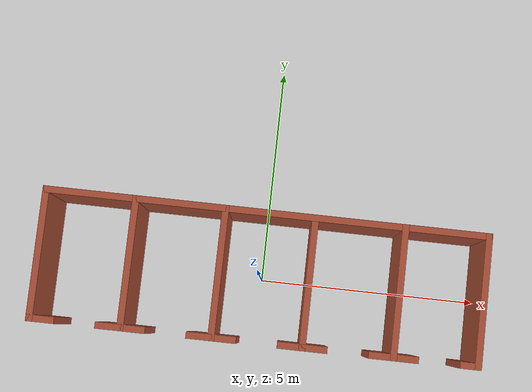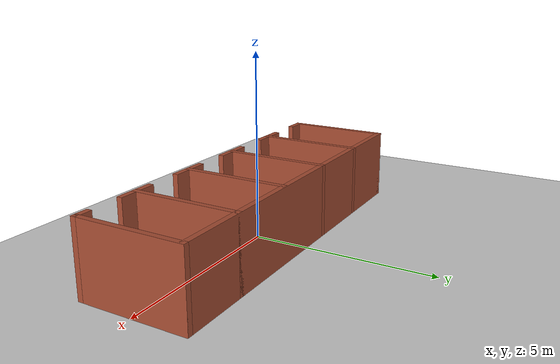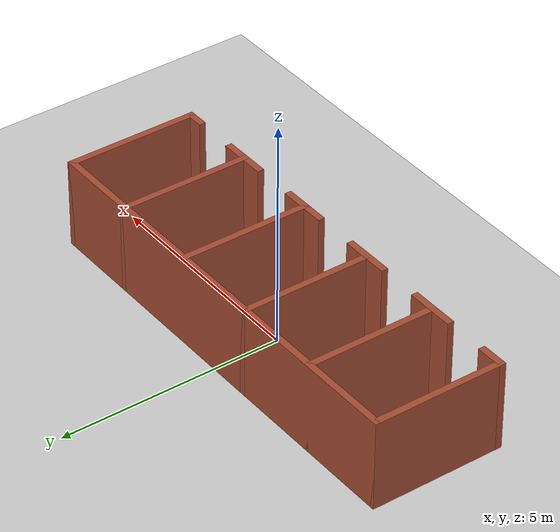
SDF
<sdf version="1.7">
 <world name="default">
  <light name="sun" type="directional">
   <pose>0 0 10 0 -0 0</pose>
   <diffuse>0.8 0.8 0.8 1</diffuse>
   <specular>0.2 0.2 0.2 1</specular>
   <attenuation>
    <range>1000</range>
    <constant>0.9</constant>
    <linear>0.01</linear>
    <quadratic>0.001</quadratic>
   </attenuation>
   <direction>-0.5 0.1 -0.9</direction>
   <spot><inner_angle>0</inner_angle><outer_angle>0</outer_angle><falloff>0</falloff></spot>
  </light>
  <model name="ground_plane">
   <static>1</static>
   <link name="link">
    <collision name="collision">
     <geometry><plane><normal>0 0 1</normal><size>100 100</size></plane></geometry>
     <surface><friction><ode><mu>100</mu><mu2>50</mu2></ode></friction></surface>
    </collision>
    <visual name="visual">
     <cast_shadows>0</cast_shadows>
     <geometry><plane><normal>0 0 1</normal><size>100 100</size></plane></geometry>
     <material>
      <script><uri>file://media/materials/scripts/gazebo.material</uri><name>Gazebo/Grey</name></script>
     </material>
    </visual>
   </link>
  </model>
  <gravity>0 0 -9.8</gravity>
  <magnetic_field>6e-06 2.3e-05 -4.2e-05</magnetic_field>
  <atmosphere type="adiabatic"/>
  <physics type="ode">
   <max_step_size>0.001</max_step_size>
   <real_time_factor>1</real_time_factor>
   <real_time_update_rate>1000</real_time_update_rate>
  </physics>
  <scene><ambient>0.4 0.4 0.4 1</ambient><background>0.7 0.7 0.7 1</background><shadows>1</shadows></scene>
  <spherical_coordinates>
   <surface_model>EARTH_WGS84</surface_model>
   <latitude_deg>0</latitude_deg>
   <longitude_deg>0</longitude_deg>
   <elevation>0</elevation>
   <heading_deg>0</heading_deg>
  </spherical_coordinates>
  <model name="garage">
   <link name="Wall_11">
    <collision name="Wall_11_Collision">
     <geometry><box><size>3 0.15 2</size></box></geometry>
     <pose>0 0 1 0 -0 0</pose>
    </collision>
    <visual name="Wall_11_Visual">
     <pose>0 0 1 0 -0 0</pose>
     <geometry><box><size>3 0.15 2</size></box></geometry>
     <material>
      <script><uri>file://media/materials/scripts/gazebo.material</uri><name>Gazebo/Bricks</name></script>
      <ambient>1 1 1 1</ambient>
     </material>
     <meta><layer>0</layer></meta>
    </visual>
    <pose>-2.925 0 0 0 -0 1.5708</pose>
   </link>
   <link name="Wall_13">
    <collision name="Wall_13_Collision">
     <geometry><box><size>3 0.15 2</size></box></geometry>
     <pose>0 0 1 0 -0 0</pose>
    </collision>
    <visual name="Wall_13_Visual">
     <pose>0 0 1 0 -0 0</pose>
     <geometry><box><size>3 0.15 2</size></box></geometry>
     <material>
      <script><uri>file://media/materials/scripts/gazebo.material</uri><name>Gazebo/Bricks</name></script>
      <ambient>1 1 1 1</ambient>
     </material>
     <meta><layer>0</layer></meta>
    </visual>
    <pose>-0.925 0 0 0 -0 1.5708</pose>
   </link>
   <link name="Wall_15">
    <collision name="Wall_15_Collision">
     <geometry><box><size>2.97 0.15 2</size></box></geometry>
     <pose>0 0 1 0 -0 0</pose>
    </collision>
    <visual name="Wall_15_Visual">
     <pose>0 0 1 0 -0 0</pose>
     <geometry><box><size>2.97 0.15 2</size></box></geometry>
     <material>
      <script><uri>file://media/materials/scripts/gazebo.material</uri><name>Gazebo/Bricks</name></script>
      <ambient>1 1 1 1</ambient>
     </material>
     <meta><layer>0</layer></meta>
    </visual>
    <pose>1.075 -0.015 0 0 -0 1.5708</pose>
   </link>
   <link name="Wall_17">
    <collision name="Wall_17_Collision">
     <geometry><box><size>3 0.15 2</size></box></geometry>
     <pose>0 0 1 0 -0 0</pose>
    </collision>
    <visual name="Wall_17_Visual">
     <pose>0 0 1 0 -0 0</pose>
     <geometry><box><size>3 0.15 2</size></box></geometry>
     <material>
      <script><uri>file://media/materials/scripts/gazebo.material</uri><name>Gazebo/Bricks</name></script>
      <ambient>1 1 1 1</ambient>
     </material>
     <meta><layer>0</layer></meta>
    </visual>
    <pose>3.075 0 0 0 -0 1.5708</pose>
   </link>
   <link name="Wall_5">
    <pose>0 -1.425 0 0 -0 0</pose>
    <visual name="Wall_5_Visual_0">
     <pose>-4.6875 0 1 0 -0 0</pose>
     <geometry><box><size>0.625 0.15 2</size></box></geometry>
     <material>
      <script><uri>file://media/materials/scripts/gazebo.material</uri><name>Gazebo/Bricks</name></script>
      <ambient>1 1 1 1</ambient>
     </material>
     <meta><layer>0</layer></meta>
    </visual>
    <collision name="Wall_5_Collision_0">
     <geometry><box><size>0.625 0.15 2</size></box></geometry>
     <pose>-4.6875 0 1 0 -0 0</pose>
    </collision>
    <visual name="Wall_5_Visual_1">
     <pose>-2.925 0 1 0 -0 0</pose>
     <geometry><box><size>1.1 0.15 2</size></box></geometry>
     <material>
      <script><uri>file://media/materials/scripts/gazebo.material</uri><name>Gazebo/Bricks</name></script>
      <ambient>1 1 1 1</ambient>
     </material>
     <meta><layer>0</layer></meta>
    </visual>
    <collision name="Wall_5_Collision_1">
     <geometry><box><size>1.1 0.15 2</size></box></geometry>
     <pose>-2.925 0 1 0 -0 0</pose>
    </collision>
    <visual name="Wall_5_Visual_2">
     <pose>-0.925 0 1 0 -0 0</pose>
     <geometry><box><size>1.1 0.15 2</size></box></geometry>
     <material>
      <script><uri>file://media/materials/scripts/gazebo.material</uri><name>Gazebo/Bricks</name></script>
      <ambient>1 1 1 1</ambient>
     </material>
     <meta><layer>0</layer></meta>
    </visual>
    <collision name="Wall_5_Collision_2">
     <geometry><box><size>1.1 0.15 2</size></box></geometry>
     <pose>-0.925 0 1 0 -0 0</pose>
    </collision>
    <visual name="Wall_5_Visual_3">
     <pose>1.075 0 1 0 -0 0</pose>
     <geometry><box><size>1.1 0.15 2</size></box></geometry>
     <material>
      <script><uri>file://media/materials/scripts/gazebo.material</uri><name>Gazebo/Bricks</name></script>
      <ambient>1 1 1 1</ambient>
     </material>
     <meta><layer>0</layer></meta>
    </visual>
    <collision name="Wall_5_Collision_3">
     <geometry><box><size>1.1 0.15 2</size></box></geometry>
     <pose>1.075 0 1 0 -0 0</pose>
    </collision>
    <visual name="Wall_5_Visual_4">
     <pose>3.075 0 1 0 -0 0</pose>
     <geometry><box><size>1.1 0.15 2</size></box></geometry>
     <material>
      <script><uri>file://media/materials/scripts/gazebo.material</uri><name>Gazebo/Bricks</name></script>
      <ambient>1 1 1 1</ambient>
     </material>
     <meta><layer>0</layer></meta>
    </visual>
    <collision name="Wall_5_Collision_4">
     <geometry><box><size>1.1 0.15 2</size></box></geometry>
     <pose>3.075 0 1 0 -0 0</pose>
    </collision>
    <visual name="Wall_5_Visual_5">
     <pose>4.7625 0 1 0 -0 0</pose>
     <geometry><box><size>0.475 0.15 2</size></box></geometry>
     <material>
      <script><uri>file://media/materials/scripts/gazebo.material</uri><name>Gazebo/Bricks</name></script>
      <ambient>1 1 1 1</ambient>
     </material>
     <meta><layer>0</layer></meta>
    </visual>
    <collision name="Wall_5_Collision_5">
     <geometry><box><size>0.475 0.15 2</size></box></geometry>
     <pose>4.7625 0 1 0 -0 0</pose>
    </collision>
   </link>
   <link name="Wall_7">
    <collision name="Wall_7_Collision">
     <geometry><box><size>3 0.15 2</size></box></geometry>
     <pose>0 0 1 0 -0 0</pose>
    </collision>
    <visual name="Wall_7_Visual">
     <pose>0 0 1 0 -0 0</pose>
     <geometry><box><size>3 0.15 2</size></box></geometry>
     <material>
      <script><uri>file://media/materials/scripts/gazebo.material</uri><name>Gazebo/Bricks</name></script>
      <ambient>1 1 1 1</ambient>
     </material>
     <meta><layer>0</layer></meta>
    </visual>
    <pose>-4.925 0 0 0 -0 1.5708</pose>
   </link>
   <link name="Wall_8">
    <collision name="Wall_8_Collision">
     <geometry><box><size>10 0.15 2</size></box></geometry>
     <pose>0 0 1 0 -0 0</pose>
    </collision>
    <visual name="Wall_8_Visual">
     <pose>0 0 1 0 -0 0</pose>
     <geometry><box><size>10 0.15 2</size></box></geometry>
     <material>
      <script><uri>file://media/materials/scripts/gazebo.material</uri><name>Gazebo/Bricks</name></script>
      <ambient>1 1 1 1</ambient>
     </material>
     <meta><layer>0</layer></meta>
    </visual>
    <pose>0 1.425 0 0 -0 0</pose>
   </link>
   <link name="Wall_9">
    <collision name="Wall_9_Collision">
     <geometry><box><size>3 0.15 2</size></box></geometry>
     <pose>0 0 1 0 -0 0</pose>
    </collision>
    <visual name="Wall_9_Visual">
     <pose>0 0 1 0 -0 0</pose>
     <geometry><box><size>3 0.15 2</size></box></geometry>
     <material>
      <script><uri>file://media/materials/scripts/gazebo.material</uri><name>Gazebo/Bricks</name></script>
      <ambient>1 1 1 1</ambient>
     </material>
     <meta><layer>0</layer></meta>
    </visual>
    <pose>4.925 0 0 0 -0 -1.5708</pose>
   </link>
   <static>1</static>
  </model>
 </world>
</sdf>
